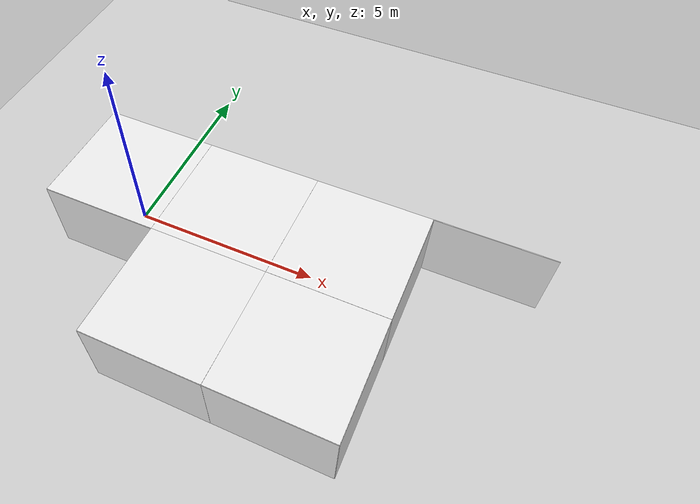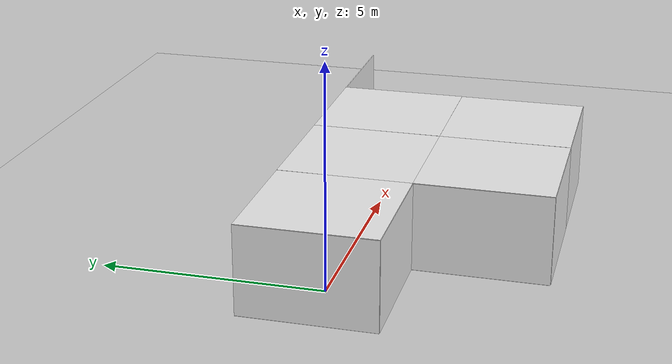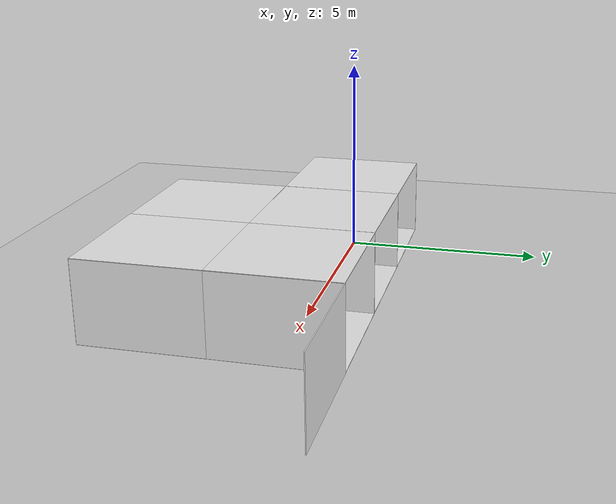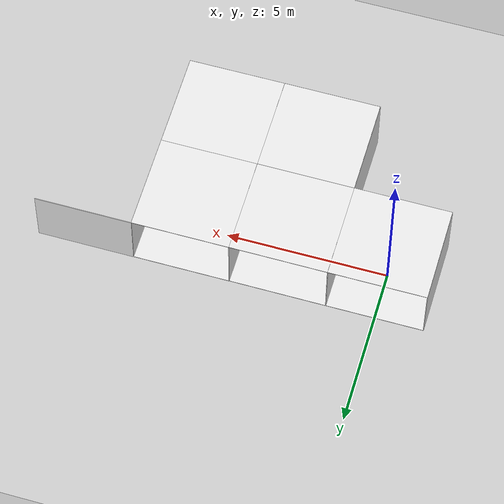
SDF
<sdf version="1.6">
 <world name="default">
  <model name="ground_plane">
   <static>1</static>
   <link name="link">
    <collision name="collision">
     <geometry><plane><normal>0 0 1</normal><size>200 200</size></plane></geometry>
     <surface><friction><ode><mu>100</mu><mu2>50</mu2></ode></friction></surface>
    </collision>
    <visual name="visual">
     <cast_shadows>0</cast_shadows>
     <geometry><plane><normal>0 0 1</normal><size>200 200</size></plane></geometry>
     <material>
      <script><uri>file://media/materials/scripts/gazebo.material</uri><name>Gazebo/Grey</name></script>
     </material>
    </visual>
   </link>
  </model>
  <model name="wall_back_0_0_0_0">
   <static>1</static>
   <pose>0.0 -1.5 1.0 0.0 0.0 0.0</pose>
   <link name="link">
    <collision name="collision"><geometry><box><size>3 0.02 2</size></box></geometry></collision>
    <visual name="visual">
     <material>
      <script><name>Gazebo/White</name><uri>file://media/materials/scripts/gazebo.material</uri></script>
     </material>
     <geometry><box><size>3 0.02 2</size></box></geometry>
    </visual>
   </link>
  </model>
  <model name="wall_right_0_0_0_0">
   <static>1</static>
   <pose>1.5 0.0 1.0 0.0 0.0 1.57</pose>
   <link name="link">
    <collision name="collision"><geometry><box><size>3 0.02 2</size></box></geometry></collision>
    <visual name="visual">
     <material>
      <script><name>Gazebo/White</name><uri>file://media/materials/scripts/gazebo.material</uri></script>
     </material>
     <geometry><box><size>3 0.02 2</size></box></geometry>
    </visual>
   </link>
  </model>
  <model name="wall_left_0_0_0_0">
   <static>1</static>
   <pose>-1.5 0.0 1.0 0.0 0.0 1.57</pose>
   <link name="link">
    <collision name="collision"><geometry><box><size>3 0.02 2</size></box></geometry></collision>
    <visual name="visual">
     <material>
      <script><name>Gazebo/White</name><uri>file://media/materials/scripts/gazebo.material</uri></script>
     </material>
     <geometry><box><size>3 0.02 2</size></box></geometry>
    </visual>
   </link>
  </model>
  <model name="wall_top_0_0_0_0">
   <static>1</static>
   <pose>0.0 0.0 2.0 1.57 0.0 0.0</pose>
   <link name="link">
    <collision name="collision"><geometry><box><size>3 0.02 3</size></box></geometry></collision>
    <visual name="visual">
     <material>
      <script><name>Gazebo/White</name><uri>file://media/materials/scripts/gazebo.material</uri></script>
     </material>
     <geometry><box><size>3 0.02 3</size></box></geometry>
    </visual>
   </link>
  </model>
  <model name="wall_bottom_0_0_0_0">
   <static>1</static>
   <pose>0.0 0.0 0.0 1.57 0.0 0.0</pose>
   <link name="link">
    <collision name="collision"><geometry><box><size>3 0.02 3</size></box></geometry></collision>
    <visual name="visual">
     <material>
      <script><name>Gazebo/White</name><uri>file://media/materials/scripts/gazebo.material</uri></script>
     </material>
     <geometry><box><size>3 0.02 3</size></box></geometry>
    </visual>
   </link>
  </model>
  <model name="wall_right_1_0_0_1">
   <static>1</static>
   <pose>1.5 0.0 1.0 0.0 0.0 4.71</pose>
   <link name="link">
    <collision name="collision"><geometry><box><size>3 0.02 2</size></box></geometry></collision>
    <visual name="visual">
     <material>
      <script><name>Gazebo/White</name><uri>file://media/materials/scripts/gazebo.material</uri></script>
     </material>
     <geometry><box><size>3 0.02 2</size></box></geometry>
    </visual>
   </link>
  </model>
  <model name="wall_left_1_0_0_1">
   <static>1</static>
   <pose>4.5 0.0 1.0 0.0 0.0 4.71</pose>
   <link name="link">
    <collision name="collision"><geometry><box><size>3 0.02 2</size></box></geometry></collision>
    <visual name="visual">
     <material>
      <script><name>Gazebo/White</name><uri>file://media/materials/scripts/gazebo.material</uri></script>
     </material>
     <geometry><box><size>3 0.02 2</size></box></geometry>
    </visual>
   </link>
  </model>
  <model name="wall_top_1_0_0_1">
   <static>1</static>
   <pose>3.0 0.0 2.0 1.57 0.0 3.14</pose>
   <link name="link">
    <collision name="collision"><geometry><box><size>3 0.02 3</size></box></geometry></collision>
    <visual name="visual">
     <material>
      <script><name>Gazebo/White</name><uri>file://media/materials/scripts/gazebo.material</uri></script>
     </material>
     <geometry><box><size>3 0.02 3</size></box></geometry>
    </visual>
   </link>
  </model>
  <model name="wall_bottom_1_0_0_1">
   <static>1</static>
   <pose>3.0 0.0 0.0 1.57 0.0 3.14</pose>
   <link name="link">
    <collision name="collision"><geometry><box><size>3 0.02 3</size></box></geometry></collision>
    <visual name="visual">
     <material>
      <script><name>Gazebo/White</name><uri>file://media/materials/scripts/gazebo.material</uri></script>
     </material>
     <geometry><box><size>3 0.02 3</size></box></geometry>
    </visual>
   </link>
  </model>
  <model name="wall_front_1_-1_0_3">
   <static>1</static>
   <pose>3.0 -4.5 1.0 0.0 0.0 3.14</pose>
   <link name="link">
    <collision name="collision"><geometry><box><size>3 0.02 2</size></box></geometry></collision>
    <visual name="visual">
     <material>
      <script><name>Gazebo/White</name><uri>file://media/materials/scripts/gazebo.material</uri></script>
     </material>
     <geometry><box><size>3 0.02 2</size></box></geometry>
    </visual>
   </link>
  </model>
  <model name="wall_right_1_-1_0_3">
   <static>1</static>
   <pose>1.5 -3.0 1.0 0.0 0.0 4.71</pose>
   <link name="link">
    <collision name="collision"><geometry><box><size>3 0.02 2</size></box></geometry></collision>
    <visual name="visual">
     <material>
      <script><name>Gazebo/White</name><uri>file://media/materials/scripts/gazebo.material</uri></script>
     </material>
     <geometry><box><size>3 0.02 2</size></box></geometry>
    </visual>
   </link>
  </model>
  <model name="wall_top_1_-1_0_3">
   <static>1</static>
   <pose>3.0 -3.0 2.0 1.57 0.0 3.14</pose>
   <link name="link">
    <collision name="collision"><geometry><box><size>3 0.02 3</size></box></geometry></collision>
    <visual name="visual">
     <material>
      <script><name>Gazebo/White</name><uri>file://media/materials/scripts/gazebo.material</uri></script>
     </material>
     <geometry><box><size>3 0.02 3</size></box></geometry>
    </visual>
   </link>
  </model>
  <model name="wall_bottom_1_-1_0_3">
   <static>1</static>
   <pose>3.0 -3.0 0.0 1.57 0.0 3.14</pose>
   <link name="link">
    <collision name="collision"><geometry><box><size>3 0.02 3</size></box></geometry></collision>
    <visual name="visual">
     <material>
      <script><name>Gazebo/White</name><uri>file://media/materials/scripts/gazebo.material</uri></script>
     </material>
     <geometry><box><size>3 0.02 3</size></box></geometry>
    </visual>
   </link>
  </model>
  <model name="wall_front_2_-1_0_3">
   <static>1</static>
   <pose>7.5 -3.0 1.0 0.0 0.0 -1.57</pose>
   <link name="link">
    <collision name="collision"><geometry><box><size>3 0.02 2</size></box></geometry></collision>
    <visual name="visual">
     <material>
      <script><name>Gazebo/White</name><uri>file://media/materials/scripts/gazebo.material</uri></script>
     </material>
     <geometry><box><size>3 0.02 2</size></box></geometry>
    </visual>
   </link>
  </model>
  <model name="wall_right_2_-1_0_3">
   <static>1</static>
   <pose>6.0 -4.5 1.0 0.0 0.0 0.0</pose>
   <link name="link">
    <collision name="collision"><geometry><box><size>3 0.02 2</size></box></geometry></collision>
    <visual name="visual">
     <material>
      <script><name>Gazebo/White</name><uri>file://media/materials/scripts/gazebo.material</uri></script>
     </material>
     <geometry><box><size>3 0.02 2</size></box></geometry>
    </visual>
   </link>
  </model>
  <model name="wall_top_2_-1_0_3">
   <static>1</static>
   <pose>6.0 -3.0 2.0 1.57 0.0 -1.57</pose>
   <link name="link">
    <collision name="collision"><geometry><box><size>3 0.02 3</size></box></geometry></collision>
    <visual name="visual">
     <material>
      <script><name>Gazebo/White</name><uri>file://media/materials/scripts/gazebo.material</uri></script>
     </material>
     <geometry><box><size>3 0.02 3</size></box></geometry>
    </visual>
   </link>
  </model>
  <model name="wall_bottom_2_-1_0_3">
   <static>1</static>
   <pose>6.0 -3.0 0.0 1.57 0.0 -1.57</pose>
   <link name="link">
    <collision name="collision"><geometry><box><size>3 0.02 3</size></box></geometry></collision>
    <visual name="visual">
     <material>
      <script><name>Gazebo/White</name><uri>file://media/materials/scripts/gazebo.material</uri></script>
     </material>
     <geometry><box><size>3 0.02 3</size></box></geometry>
    </visual>
   </link>
  </model>
  <model name="wall_right_2_0_0_1">
   <static>1</static>
   <pose>7.5 0.0 1.0 0.0 0.0 1.57</pose>
   <link name="link">
    <collision name="collision"><geometry><box><size>3 0.02 2</size></box></geometry></collision>
    <visual name="visual">
     <material>
      <script><name>Gazebo/White</name><uri>file://media/materials/scripts/gazebo.material</uri></script>
     </material>
     <geometry><box><size>3 0.02 2</size></box></geometry>
    </visual>
   </link>
  </model>
  <model name="wall_left_2_0_0_1">
   <static>1</static>
   <pose>4.5 0.0 1.0 0.0 0.0 1.57</pose>
   <link name="link">
    <collision name="collision"><geometry><box><size>3 0.02 2</size></box></geometry></collision>
    <visual name="visual">
     <material>
      <script><name>Gazebo/White</name><uri>file://media/materials/scripts/gazebo.material</uri></script>
     </material>
     <geometry><box><size>3 0.02 2</size></box></geometry>
    </visual>
   </link>
  </model>
  <model name="wall_top_2_0_0_1">
   <static>1</static>
   <pose>6.0 0.0 2.0 1.57 0.0 0.0</pose>
   <link name="link">
    <collision name="collision"><geometry><box><size>3 0.02 3</size></box></geometry></collision>
    <visual name="visual">
     <material>
      <script><name>Gazebo/White</name><uri>file://media/materials/scripts/gazebo.material</uri></script>
     </material>
     <geometry><box><size>3 0.02 3</size></box></geometry>
    </visual>
   </link>
  </model>
  <model name="wall_bottom_2_0_0_1">
   <static>1</static>
   <pose>6.0 0.0 0.0 1.57 0.0 0.0</pose>
   <link name="link">
    <collision name="collision"><geometry><box><size>3 0.02 3</size></box></geometry></collision>
    <visual name="visual">
     <material>
      <script><name>Gazebo/White</name><uri>file://media/materials/scripts/gazebo.material</uri></script>
     </material>
     <geometry><box><size>3 0.02 3</size></box></geometry>
    </visual>
   </link>
  </model>
  <model name="wall_right_3_1_0_4">
   <static>1</static>
   <pose>9.0 1.5 1.0 0.0 0.0 0.0</pose>
   <link name="link">
    <collision name="collision"><geometry><box><size>3 0.02 2</size></box></geometry></collision>
    <visual name="visual">
     <material>
      <script><name>Gazebo/White</name><uri>file://media/materials/scripts/gazebo.material</uri></script>
     </material>
     <geometry><box><size>3 0.02 2</size></box></geometry>
    </visual>
   </link>
  </model>
 </world>
</sdf>
